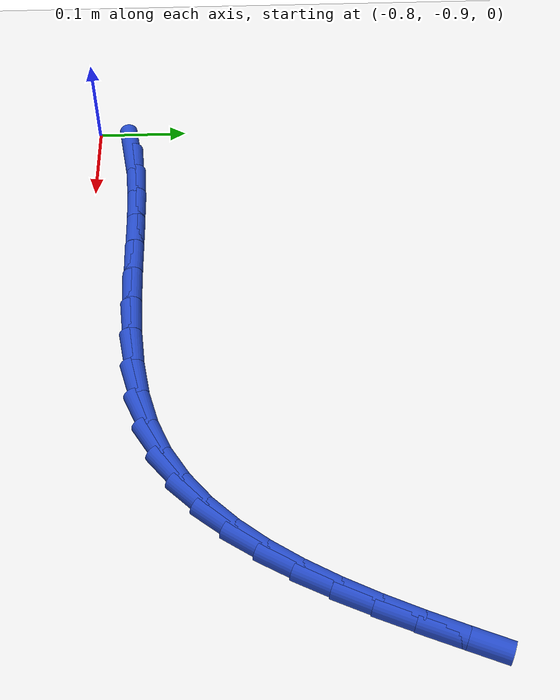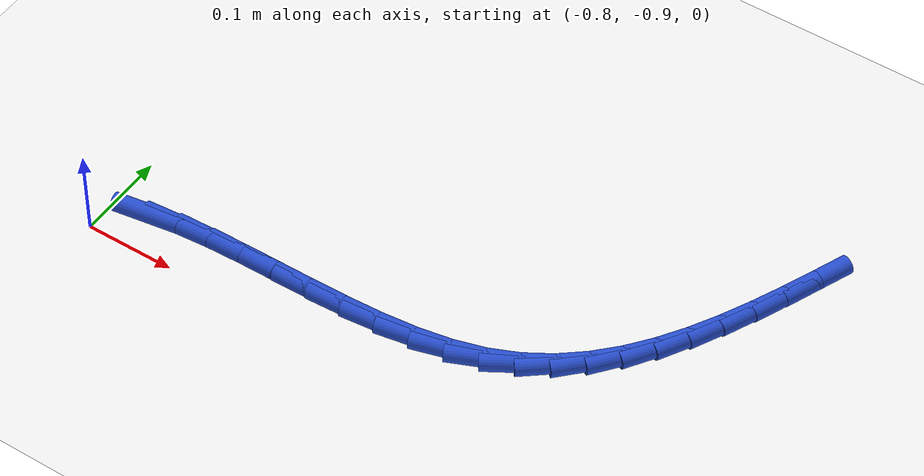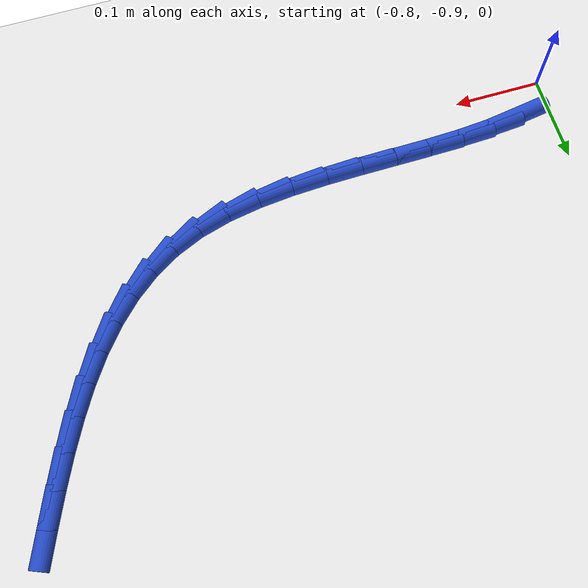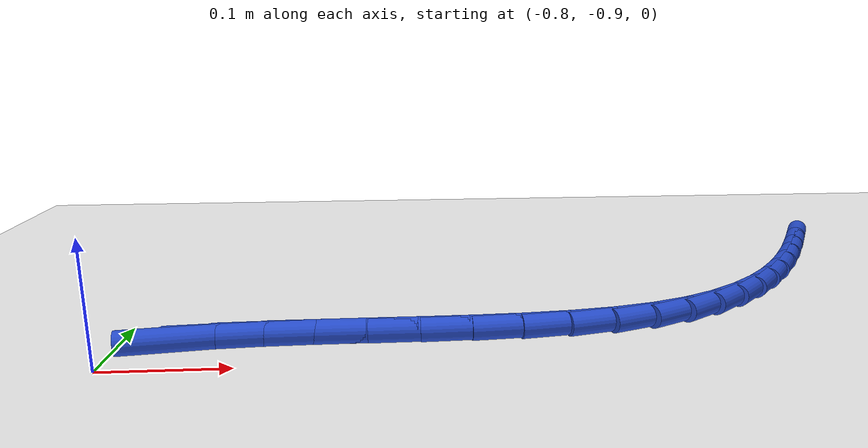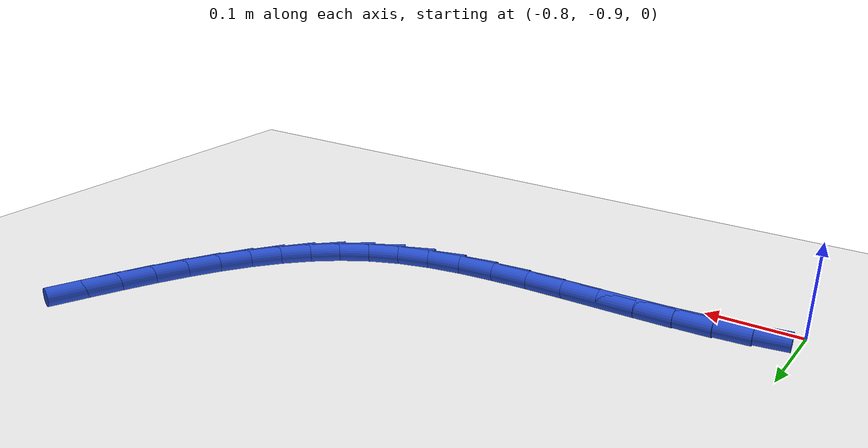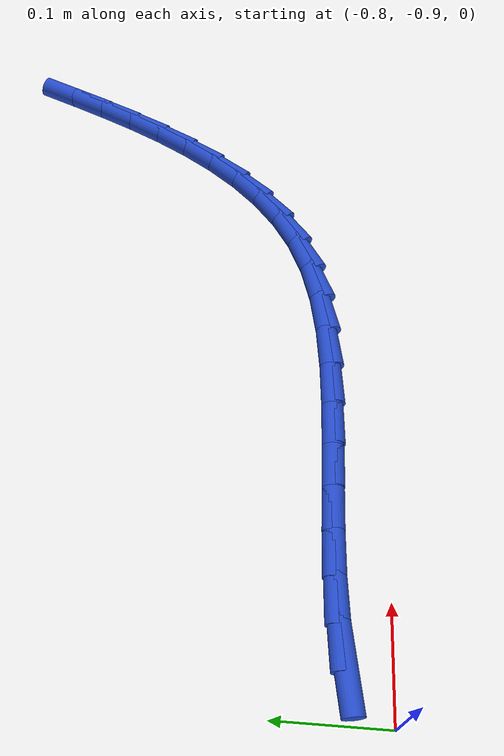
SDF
<sdf version="1.6">
 <world name="default">
  <model name="ground_plane">
   <static>1</static>
   <link name="link">
    <collision name="collision">
     <geometry><plane><normal>0 0 1</normal><size>100 100</size></plane></geometry>
     <surface><friction><ode><mu>100</mu><mu2>50</mu2></ode></friction></surface>
    </collision>
    <visual name="visual">
     <cast_shadows>0</cast_shadows>
     <geometry><plane><normal>0 0 1</normal><size>100 100</size></plane></geometry>
     <material>
      <script><uri>file://media/materials/scripts/gazebo.material</uri><name>Gazebo/WhiteGlow</name></script>
     </material>
    </visual>
   </link>
  </model>
  <model name="line">
   <link name="link_213">
    <pose>-0.755587400917328 -0.8599968328770876 0.01 0 1.57 0.15140108076310044</pose>
    <collision name="collision">
     <geometry><cylinder><radius>0.01</radius><length>0.08</length></cylinder></geometry>
    </collision>
    <visual name="visual">
     <material>
      <script><name>Gazebo/Blue</name><uri>file://media/materials/scripts/gazebo.material</uri></script>
     </material>
     <geometry><cylinder><radius>0.01</radius><length>0.08</length></cylinder></geometry>
    </visual>
   </link>
   <link name="link_214">
    <pose>-0.7216883041150476 -0.8548248949141327 0.01 0 1.57 0.0775698090945318</pose>
    <collision name="collision">
     <geometry><cylinder><radius>0.01</radius><length>0.08</length></cylinder></geometry>
    </collision>
    <visual name="visual">
     <material>
      <script><name>Gazebo/Blue</name><uri>file://media/materials/scripts/gazebo.material</uri></script>
     </material>
     <geometry><cylinder><radius>0.01</radius><length>0.08</length></cylinder></geometry>
    </visual>
   </link>
   <link name="link_215">
    <pose>-0.6850683071676928 -0.851978577615383 0.01 0 1.57 0.03184672681250991</pose>
    <collision name="collision">
     <geometry><cylinder><radius>0.01</radius><length>0.08</length></cylinder></geometry>
    </collision>
    <visual name="visual">
     <material>
      <script><name>Gazebo/Blue</name><uri>file://media/materials/scripts/gazebo.material</uri></script>
     </material>
     <geometry><cylinder><radius>0.01</radius><length>0.08</length></cylinder></geometry>
    </visual>
   </link>
   <link name="link_216">
    <pose>-0.6463809286288592 -0.8507460945445906 0.01 0 1.57 0.008239839659837576</pose>
    <collision name="collision">
     <geometry><cylinder><radius>0.01</radius><length>0.08</length></cylinder></geometry>
    </collision>
    <visual name="visual">
     <material>
      <script><name>Gazebo/Blue</name><uri>file://media/materials/scripts/gazebo.material</uri></script>
     </material>
     <geometry><cylinder><radius>0.01</radius><length>0.08</length></cylinder></geometry>
    </visual>
   </link>
   <link name="link_217">
    <pose>-0.6062796870521425 -0.8504156592655078 0.01 0 1.57 0.0034304437805707856</pose>
    <collision name="collision">
     <geometry><cylinder><radius>0.01</radius><length>0.08</length></cylinder></geometry>
    </collision>
    <visual name="visual">
     <material>
      <script><name>Gazebo/Blue</name><uri>file://media/materials/scripts/gazebo.material</uri></script>
     </material>
     <geometry><cylinder><radius>0.01</radius><length>0.08</length></cylinder></geometry>
    </visual>
   </link>
   <link name="link_218">
    <pose>-0.5654181009911388 -0.8502754853418871 0.01 0 1.57 0.016150039562081654</pose>
    <collision name="collision">
     <geometry><cylinder><radius>0.01</radius><length>0.08</length></cylinder></geometry>
    </collision>
    <visual name="visual">
     <material>
      <script><name>Gazebo/Blue</name><uri>file://media/materials/scripts/gazebo.material</uri></script>
     </material>
     <geometry><cylinder><radius>0.01</radius><length>0.08</length></cylinder></geometry>
    </visual>
   </link>
   <link name="link_219">
    <pose>-0.5244496889994436 -0.8496137863374805 0.01 0 1.57 0.04684669718525826</pose>
    <collision name="collision">
     <geometry><cylinder><radius>0.01</radius><length>0.08</length></cylinder></geometry>
    </collision>
    <visual name="visual">
     <material>
      <script><name>Gazebo/Blue</name><uri>file://media/materials/scripts/gazebo.material</uri></script>
     </material>
     <geometry><cylinder><radius>0.01</radius><length>0.08</length></cylinder></geometry>
    </visual>
   </link>
   <link name="link_220">
    <pose>-0.48402796963065275 -0.8477187758160403 0.01 0 1.57 0.0975971677802522</pose>
    <collision name="collision">
     <geometry><cylinder><radius>0.01</radius><length>0.08</length></cylinder></geometry>
    </collision>
    <visual name="visual">
     <material>
      <script><name>Gazebo/Blue</name><uri>file://media/materials/scripts/gazebo.material</uri></script>
     </material>
     <geometry><cylinder><radius>0.01</radius><length>0.08</length></cylinder></geometry>
    </visual>
   </link>
   <link name="link_221">
    <pose>-0.44480646143836217 -0.843878667341319 0.01 0 1.57 0.17214532566068064</pose>
    <collision name="collision">
     <geometry><cylinder><radius>0.01</radius><length>0.08</length></cylinder></geometry>
    </collision>
    <visual name="visual">
     <material>
      <script><name>Gazebo/Blue</name><uri>file://media/materials/scripts/gazebo.material</uri></script>
     </material>
     <geometry><cylinder><radius>0.01</radius><length>0.08</length></cylinder></geometry>
    </visual>
   </link>
   <link name="link_222">
    <pose>-0.4074386829761675 -0.8373816744770682 0.01 0 1.57 0.2757919793648439</pose>
    <collision name="collision">
     <geometry><cylinder><radius>0.01</radius><length>0.08</length></cylinder></geometry>
    </collision>
    <visual name="visual">
     <material>
      <script><name>Gazebo/Blue</name><uri>file://media/materials/scripts/gazebo.material</uri></script>
     </material>
     <geometry><cylinder><radius>0.01</radius><length>0.08</length></cylinder></geometry>
    </visual>
   </link>
   <link name="link_223">
    <pose>-0.3725781527976646 -0.8275160107870411 0.01 0 1.57 0.41092862455109463</pose>
    <collision name="collision">
     <geometry><cylinder><radius>0.01</radius><length>0.08</length></cylinder></geometry>
    </collision>
    <visual name="visual">
     <material>
      <script><name>Gazebo/Blue</name><uri>file://media/materials/scripts/gazebo.material</uri></script>
     </material>
     <geometry><cylinder><radius>0.01</radius><length>0.08</length></cylinder></geometry>
    </visual>
   </link>
   <link name="link_224">
    <pose>-0.34079659755080904 -0.8136676526786399 0.01 0 1.57 0.5530676645815862</pose>
    <collision name="collision">
     <geometry><cylinder><radius>0.01</radius><length>0.08</length></cylinder></geometry>
    </collision>
    <visual name="visual">
     <material>
      <script><name>Gazebo/Blue</name><uri>file://media/materials/scripts/gazebo.material</uri></script>
     </material>
     <geometry><cylinder><radius>0.01</radius><length>0.08</length></cylinder></geometry>
    </visual>
   </link>
   <link name="link_225">
    <pose>-0.31207049605788273 -0.7959340542985294 0.01 0 1.57 0.6850116527631864</pose>
    <collision name="collision">
     <geometry><cylinder><radius>0.01</radius><length>0.08</length></cylinder></geometry>
    </collision>
    <visual name="visual">
     <material>
      <script><name>Gazebo/Blue</name><uri>file://media/materials/scripts/gazebo.material</uri></script>
     </material>
     <geometry><cylinder><radius>0.01</radius><length>0.08</length></cylinder></geometry>
    </visual>
   </link>
   <link name="link_226">
    <pose>-0.28611311062701394 -0.7747272827702707 0.01 0 1.57 0.8019416549236976</pose>
    <collision name="collision">
     <geometry><cylinder><radius>0.01</radius><length>0.08</length></cylinder></geometry>
    </collision>
    <visual name="visual">
     <material>
      <script><name>Gazebo/Blue</name><uri>file://media/materials/scripts/gazebo.material</uri></script>
     </material>
     <geometry><cylinder><radius>0.01</radius><length>0.08</length></cylinder></geometry>
    </visual>
   </link>
   <link name="link_227">
    <pose>-0.26263653670246817 -0.7504607999266992 0.01 0 1.57 0.9016657208206511</pose>
    <collision name="collision">
     <geometry><cylinder><radius>0.01</radius><length>0.08</length></cylinder></geometry>
    </collision>
    <visual name="visual">
     <material>
      <script><name>Gazebo/Blue</name><uri>file://media/materials/scripts/gazebo.material</uri></script>
     </material>
     <geometry><cylinder><radius>0.01</radius><length>0.08</length></cylinder></geometry>
    </visual>
   </link>
   <link name="link_228">
    <pose>-0.24135286972851105 -0.7235480676006508 0.01 0 1.57 0.98402235751146</pose>
    <collision name="collision">
     <geometry><cylinder><radius>0.01</radius><length>0.08</length></cylinder></geometry>
    </collision>
    <visual name="visual">
     <material>
      <script><name>Gazebo/Blue</name><uri>file://media/materials/scripts/gazebo.material</uri></script>
     </material>
     <geometry><cylinder><radius>0.01</radius><length>0.08</length></cylinder></geometry>
    </visual>
   </link>
   <link name="link_229">
    <pose>-0.22197420514940783 -0.6944025476249608 0.01 0 1.57 1.05001163269918</pose>
    <collision name="collision">
     <geometry><cylinder><radius>0.01</radius><length>0.08</length></cylinder></geometry>
    </collision>
    <visual name="visual">
     <material>
      <script><name>Gazebo/Blue</name><uri>file://media/materials/scripts/gazebo.material</uri></script>
     </material>
     <geometry><cylinder><radius>0.01</radius><length>0.08</length></cylinder></geometry>
    </visual>
   </link>
   <link name="link_230">
    <pose>-0.20421263840942405 -0.6634377018324649 0.01 0 1.57 1.1010626274611524</pose>
    <collision name="collision">
     <geometry><cylinder><radius>0.01</radius><length>0.08</length></cylinder></geometry>
    </collision>
    <visual name="visual">
     <material>
      <script><name>Gazebo/Blue</name><uri>file://media/materials/scripts/gazebo.material</uri></script>
     </material>
     <geometry><cylinder><radius>0.01</radius><length>0.08</length></cylinder></geometry>
    </visual>
   </link>
   <link name="link_231">
    <pose>-0.1877802649528252 -0.6310669920559989 0.01 0 1.57 1.138568319380944</pose>
    <collision name="collision">
     <geometry><cylinder><radius>0.01</radius><length>0.08</length></cylinder></geometry>
    </collision>
    <visual name="visual">
     <material>
      <script><name>Gazebo/Blue</name><uri>file://media/materials/scripts/gazebo.material</uri></script>
     </material>
     <geometry><cylinder><radius>0.01</radius><length>0.08</length></cylinder></geometry>
    </visual>
   </link>
   <link name="link_232">
    <pose>-0.17238918022387675 -0.597703880128398 0.01 0 1.57 1.1636390728247479</pose>
    <collision name="collision">
     <geometry><cylinder><radius>0.01</radius><length>0.08</length></cylinder></geometry>
    </collision>
    <visual name="visual">
     <material>
      <script><name>Gazebo/Blue</name><uri>file://media/materials/scripts/gazebo.material</uri></script>
     </material>
     <geometry><cylinder><radius>0.01</radius><length>0.08</length></cylinder></geometry>
    </visual>
   </link>
   <link name="link_233">
    <pose>-0.1577514796668442 -0.5637618278824982 0.01 0 1.57 1.1769861521542282</pose>
    <collision name="collision">
     <geometry><cylinder><radius>0.01</radius><length>0.08</length></cylinder></geometry>
    </collision>
    <visual name="visual">
     <material>
      <script><name>Gazebo/Blue</name><uri>file://media/materials/scripts/gazebo.material</uri></script>
     </material>
     <geometry><cylinder><radius>0.01</radius><length>0.08</length></cylinder></geometry>
    </visual>
   </link>
  </model>
 </world>
</sdf>
